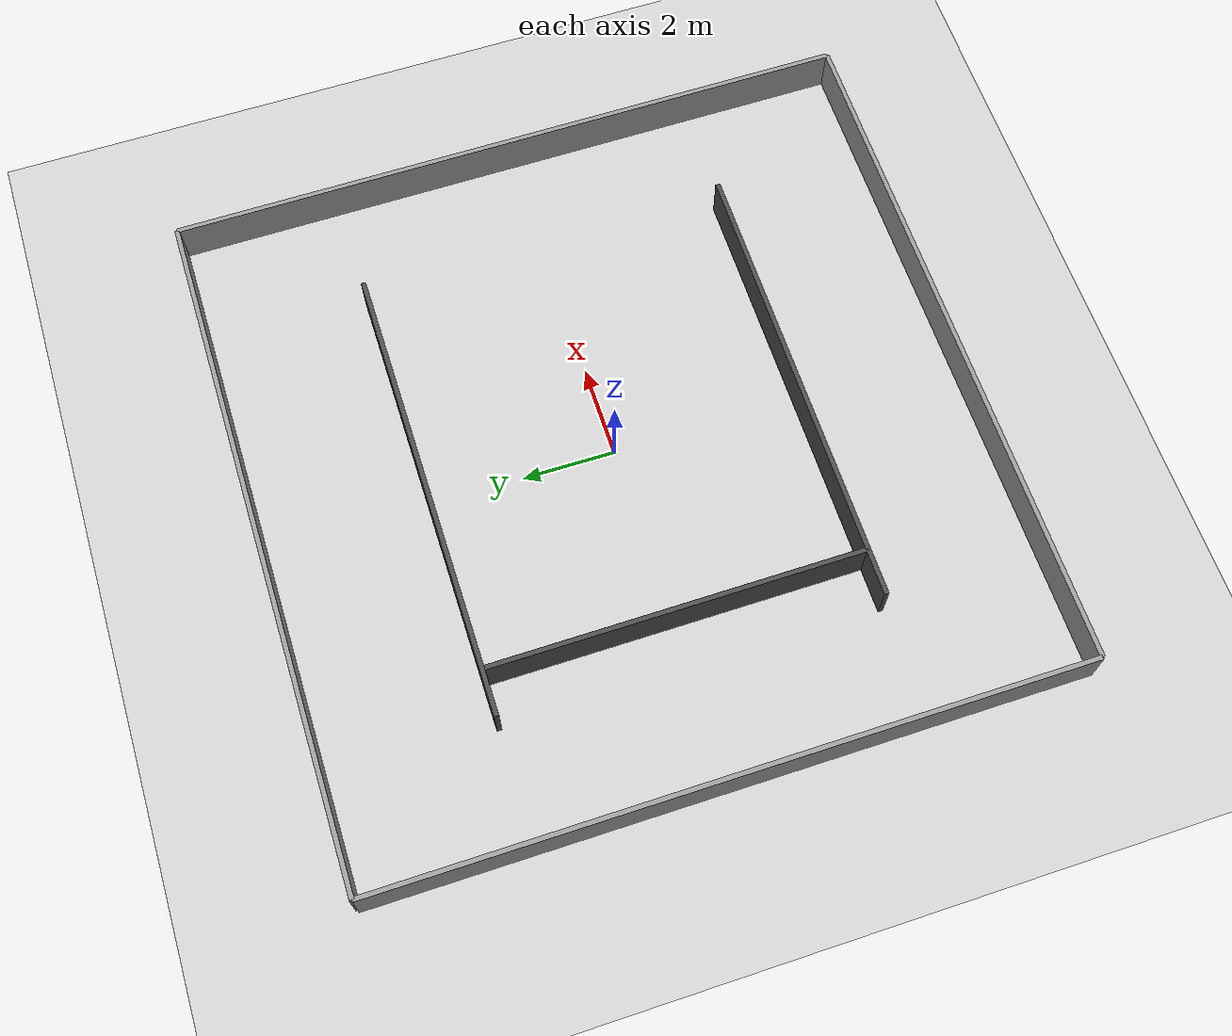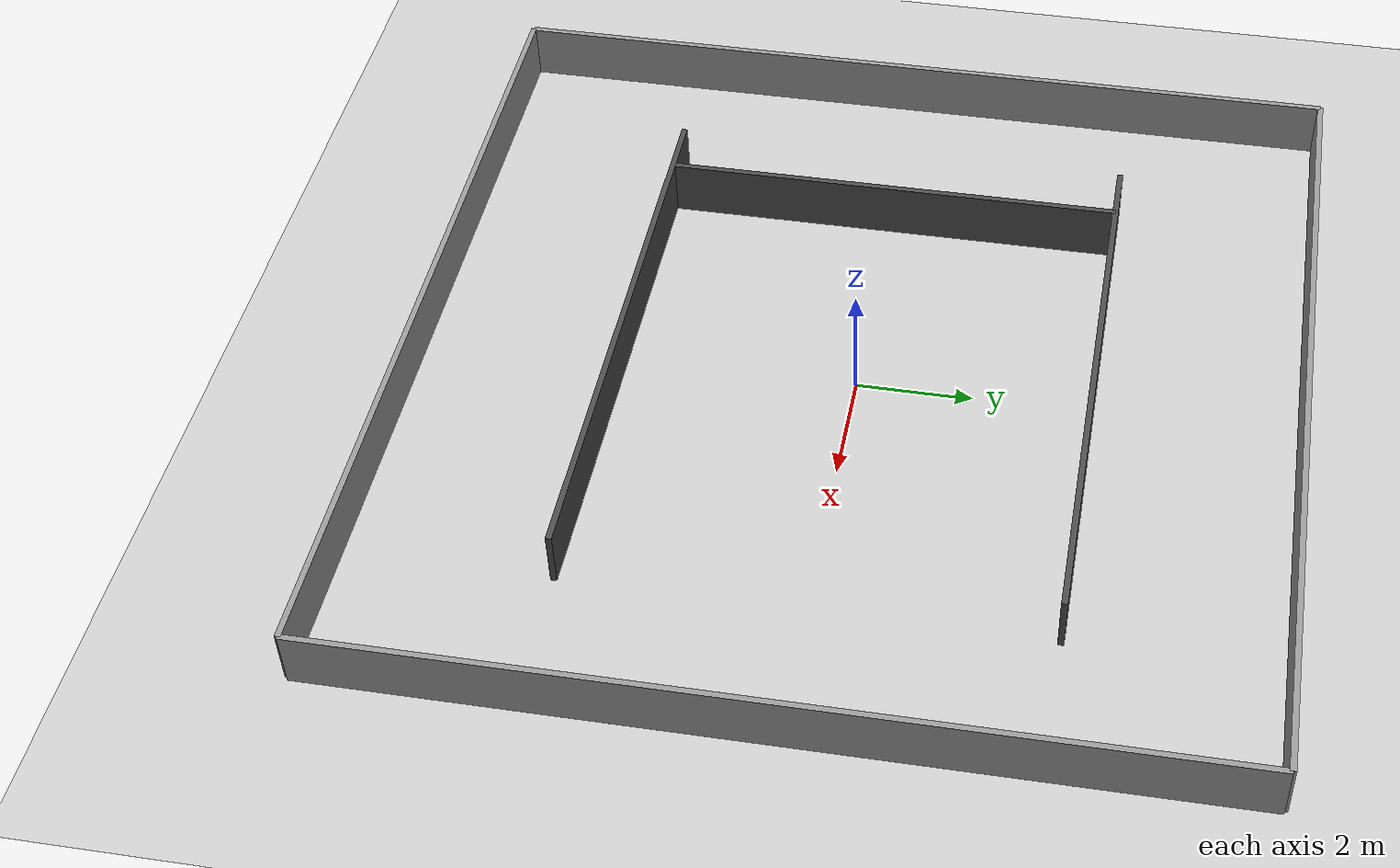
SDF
<sdf version="1.6">
 <world name="my_custom_indoor_world">
  <include><uri>model://sun</uri></include>
  <include><uri>model://ground_plane</uri></include>
  <light name="sun_light" type="directional">
   <pose>0 0 10 0 -30 0</pose>
   <diffuse>0.8 0.8 0.8 1</diffuse>
   <specular>0.2 0.2 0.2 1</specular>
   <attenuation>
    <range>1000</range>
    <constant>0.9</constant>
    <linear>0.01</linear>
    <quadratic>0.001</quadratic>
   </attenuation>
   <direction>-0.5 0.5 -1</direction>
  </light>
  <model name="wall_north">
   <pose>0 7.5 0.5 0 0 0</pose>
   <static>true</static>
   <link name="link">
    <collision name="collision"><geometry><box><size>15 0.1 1</size></box></geometry></collision>
    <visual name="visual">
     <geometry><box><size>15 0.1 1</size></box></geometry>
     <material>
      <script><uri>file://media/materials/scripts/gazebo.material</uri><name>Gazebo/Grey</name></script>
     </material>
    </visual>
   </link>
  </model>
  <model name="wall_south">
   <pose>0 -7.5 0.5 0 0 0</pose>
   <static>true</static>
   <link name="link">
    <collision name="collision"><geometry><box><size>15 0.1 1</size></box></geometry></collision>
    <visual name="visual">
     <geometry><box><size>15 0.1 1</size></box></geometry>
     <material>
      <script><uri>file://media/materials/scripts/gazebo.material</uri><name>Gazebo/Grey</name></script>
     </material>
    </visual>
   </link>
  </model>
  <model name="wall_east">
   <pose>7.5 0 0.5 0 0 1.5707</pose>
   <static>true</static>
   <link name="link">
    <collision name="collision"><geometry><box><size>15 0.1 1</size></box></geometry></collision>
    <visual name="visual">
     <geometry><box><size>15 0.1 1</size></box></geometry>
     <material>
      <script><uri>file://media/materials/scripts/gazebo.material</uri><name>Gazebo/Grey</name></script>
     </material>
    </visual>
   </link>
  </model>
  <model name="wall_west">
   <pose>-7.5 0 0.5 0 0 1.5707</pose>
   <static>true</static>
   <link name="link">
    <collision name="collision"><geometry><box><size>15 0.1 1</size></box></geometry></collision>
    <visual name="visual">
     <geometry><box><size>15 0.1 1</size></box></geometry>
     <material>
      <script><uri>file://media/materials/scripts/gazebo.material</uri><name>Gazebo/Grey</name></script>
     </material>
    </visual>
   </link>
  </model>
  <model name="partition_horizontal_top">
   <pose>0 4 0.5 0 0 0</pose>
   <static>true</static>
   <link name="link">
    <collision name="collision"><geometry><box><size>10 0.1 1</size></box></geometry></collision>
    <visual name="visual">
     <geometry><box><size>10 0.1 1</size></box></geometry>
     <material>
      <script><uri>file://media/materials/scripts/gazebo.material</uri><name>Gazebo/DarkGrey</name></script>
     </material>
    </visual>
   </link>
  </model>
  <model name="partition_horizontal_bottom">
   <pose>0 -4 0.5 0 0 0</pose>
   <static>true</static>
   <link name="link">
    <collision name="collision"><geometry><box><size>10 0.1 1</size></box></geometry></collision>
    <visual name="visual">
     <geometry><box><size>10 0.1 1</size></box></geometry>
     <material>
      <script><uri>file://media/materials/scripts/gazebo.material</uri><name>Gazebo/DarkGrey</name></script>
     </material>
    </visual>
   </link>
  </model>
  <model name="partition_vertical_left">
   <pose>-4 0 0.5 0 0 1.5707</pose>
   <static>true</static>
   <link name="link">
    <collision name="collision"><geometry><box><size>8 0.1 1</size></box></geometry></collision>
    <visual name="visual">
     <geometry><box><size>8 0.1 1</size></box></geometry>
     <material>
      <script><uri>file://media/materials/scripts/gazebo.material</uri><name>Gazebo/DarkGrey</name></script>
     </material>
    </visual>
   </link>
  </model>
 </world>
</sdf>
